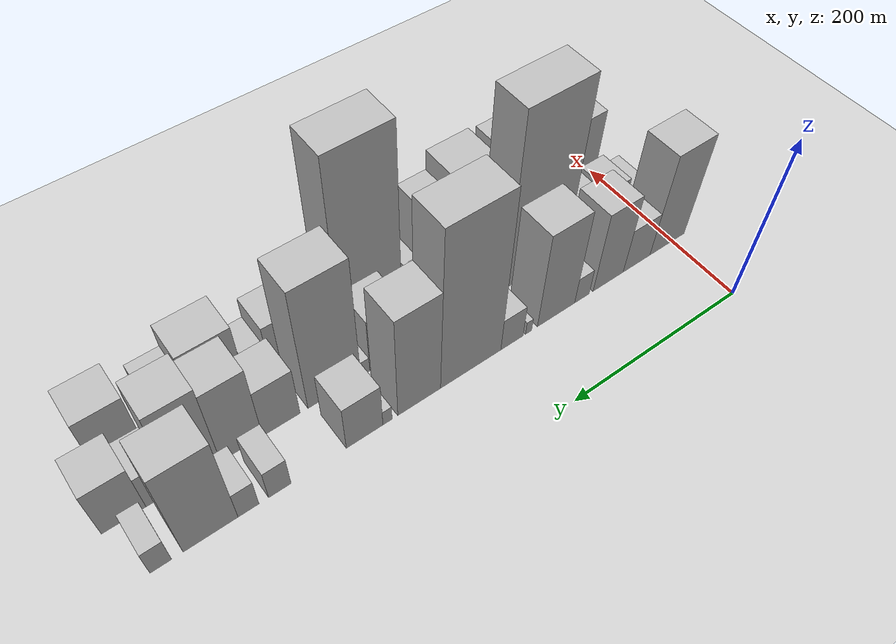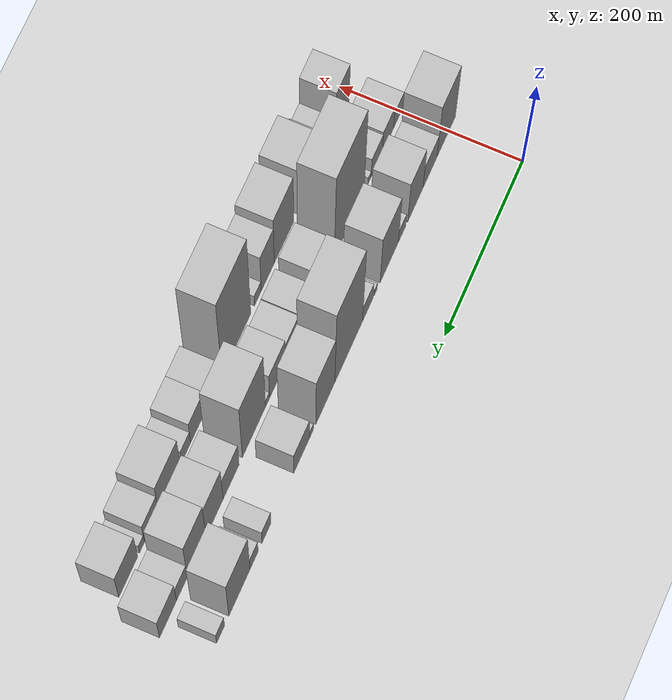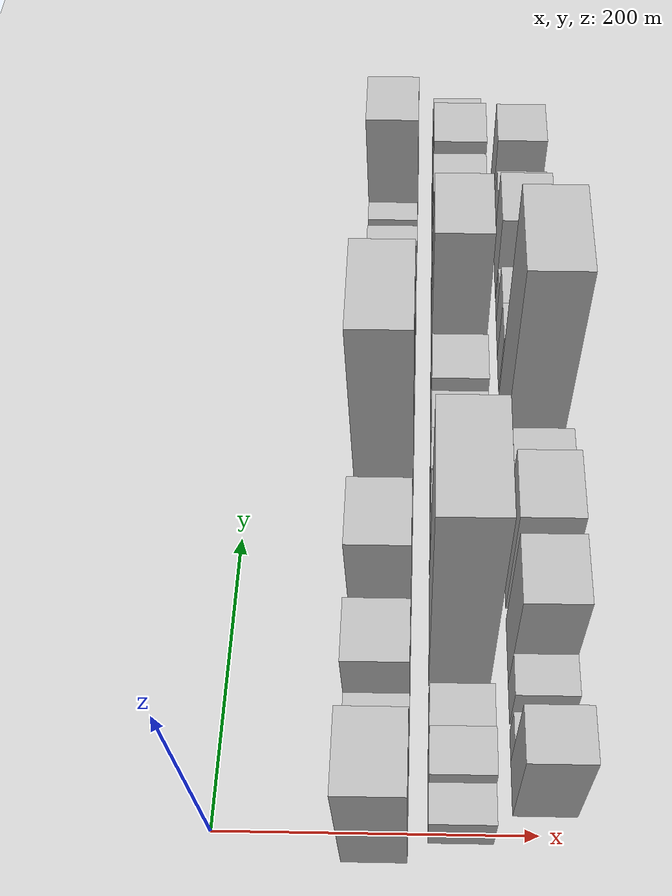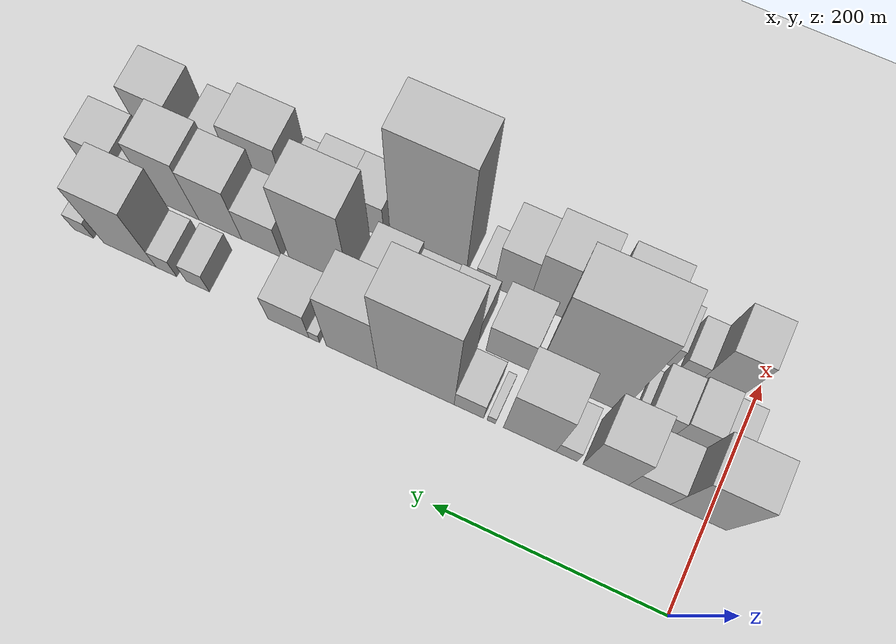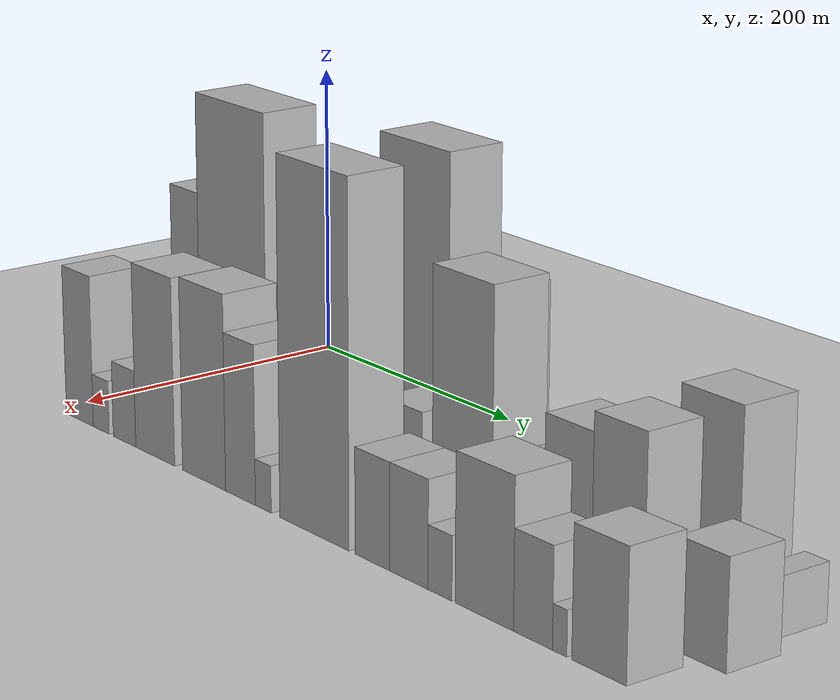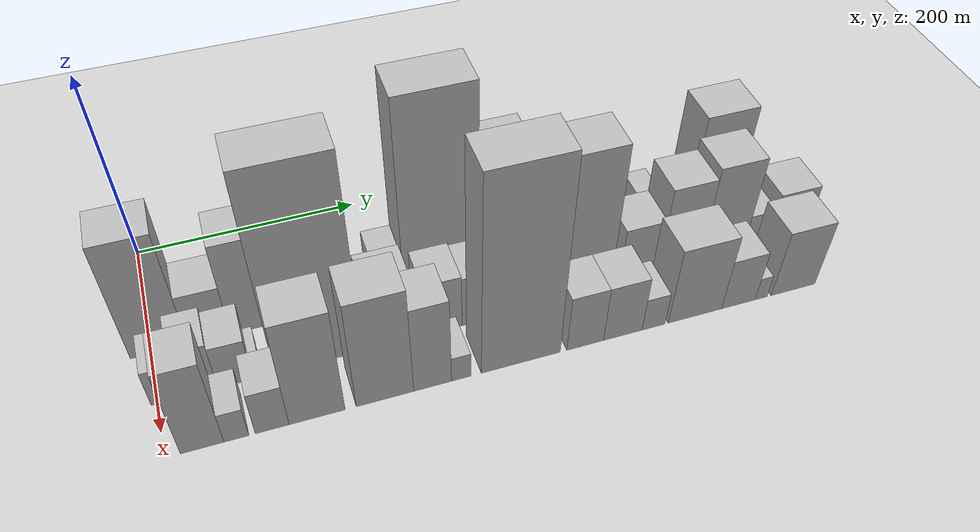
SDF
<sdf version="1.6">
 <world name="default">
  <include>
   <name>ground_plane_2</name>
   <uri>model://HANNAS_ground_plane</uri>
   <pose>100 0 0  0 0 0</pose>
  </include>
  <model name="building_17">
   <static>1</static>
   <pose>100.0000 6.9142 0 0.000000 0.000000 0.000000</pose>
   <link name="link">
    <pose>0 0 67.50 0 0 0</pose>
    <collision name="collision"><geometry><box><size>40.0000 47.3320 135.0000</size></box></geometry></collision>
    <visual name="visual">
     <cast_shadows>0</cast_shadows>
     <geometry><box><size>40.0000 47.3320 135.0000</size></box></geometry>
     <material>
      <script>
       <uri>model://HANNAS_wall/materials/scripts</uri>
       <uri>model://HANNAS_wall/materials/textures</uri>
       <name>vrc/HANNAS_wall</name>
      </script>
     </material>
    </visual>
   </link>
  </model>
  <model name="building_18">
   <static>1</static>
   <pose>100.0000 48.4592 0 0.000000 0.000000 0.000000</pose>
   <link name="link">
    <pose>0 0 30.00 0 0 0</pose>
    <collision name="collision"><geometry><box><size>40.0000 35.7579 60.0000</size></box></geometry></collision>
    <visual name="visual">
     <cast_shadows>0</cast_shadows>
     <geometry><box><size>40.0000 35.7579 60.0000</size></box></geometry>
     <material>
      <script>
       <uri>model://HANNAS_wall/materials/scripts</uri>
       <uri>model://HANNAS_wall/materials/textures</uri>
       <name>vrc/HANNAS_wall</name>
      </script>
     </material>
    </visual>
   </link>
  </model>
  <model name="building_19">
   <static>1</static>
   <pose>100.0000 85.9648 0 0.000000 0.000000 0.000000</pose>
   <link name="link">
    <pose>0 0 54.00 0 0 0</pose>
    <collision name="collision"><geometry><box><size>40.0000 39.2534 108.0000</size></box></geometry></collision>
    <visual name="visual">
     <cast_shadows>0</cast_shadows>
     <geometry><box><size>40.0000 39.2534 108.0000</size></box></geometry>
     <material>
      <script>
       <uri>model://HANNAS_wall/materials/scripts</uri>
       <uri>model://HANNAS_wall/materials/textures</uri>
       <name>vrc/HANNAS_wall</name>
      </script>
     </material>
    </visual>
   </link>
  </model>
  <model name="building_20">
   <static>1</static>
   <pose>100.0000 119.7995 0 0.000000 0.000000 0.000000</pose>
   <link name="link">
    <pose>0 0 18.00 0 0 0</pose>
    <collision name="collision"><geometry><box><size>40.0000 18.4160 36.0000</size></box></geometry></collision>
    <visual name="visual">
     <cast_shadows>0</cast_shadows>
     <geometry><box><size>40.0000 18.4160 36.0000</size></box></geometry>
     <material>
      <script>
       <uri>model://HANNAS_wall/materials/scripts</uri>
       <uri>model://HANNAS_wall/materials/textures</uri>
       <name>vrc/HANNAS_wall</name>
      </script>
     </material>
    </visual>
   </link>
  </model>
  <model name="building_21">
   <static>1</static>
   <pose>100.0000 151.9927 0 0.000000 0.000000 0.000000</pose>
   <link name="link">
    <pose>0 0 64.50 0 0 0</pose>
    <collision name="collision"><geometry><box><size>40.0000 45.9705 129.0000</size></box></geometry></collision>
    <visual name="visual">
     <cast_shadows>0</cast_shadows>
     <geometry><box><size>40.0000 45.9705 129.0000</size></box></geometry>
     <material>
      <script>
       <uri>model://HANNAS_wall/materials/scripts</uri>
       <uri>model://HANNAS_wall/materials/textures</uri>
       <name>vrc/HANNAS_wall</name>
      </script>
     </material>
    </visual>
   </link>
  </model>
  <model name="building_22">
   <static>1</static>
   <pose>100.0000 185.6658 0 0.000000 0.000000 0.000000</pose>
   <link name="link">
    <pose>0 0 9.00 0 0 0</pose>
    <collision name="collision"><geometry><box><size>40.0000 7.3758 18.0000</size></box></geometry></collision>
    <visual name="visual">
     <cast_shadows>0</cast_shadows>
     <geometry><box><size>40.0000 7.3758 18.0000</size></box></geometry>
     <material>
      <script>
       <uri>model://HANNAS_wall/materials/scripts</uri>
       <uri>model://HANNAS_wall/materials/textures</uri>
       <name>vrc/HANNAS_wall</name>
      </script>
     </material>
    </visual>
   </link>
  </model>
  <model name="building_23">
   <static>1</static>
   <pose>100.0000 205.4401 0 0.000000 0.000000 0.000000</pose>
   <link name="link">
    <pose>0 0 22.50 0 0 0</pose>
    <collision name="collision"><geometry><box><size>40.0000 26.1728 45.0000</size></box></geometry></collision>
    <visual name="visual">
     <cast_shadows>0</cast_shadows>
     <geometry><box><size>40.0000 26.1728 45.0000</size></box></geometry>
     <material>
      <script>
       <uri>model://HANNAS_wall/materials/scripts</uri>
       <uri>model://HANNAS_wall/materials/textures</uri>
       <name>vrc/HANNAS_wall</name>
      </script>
     </material>
    </visual>
   </link>
  </model>
  <model name="building_24">
   <static>1</static>
   <pose>100.0000 252.8469 0 0.000000 0.000000 0.000000</pose>
   <link name="link">
    <pose>0 0 108.00 0 0 0</pose>
    <collision name="collision"><geometry><box><size>40.0000 68.6407 216.0000</size></box></geometry></collision>
    <visual name="visual">
     <cast_shadows>0</cast_shadows>
     <geometry><box><size>40.0000 68.6407 216.0000</size></box></geometry>
     <material>
      <script>
       <uri>model://HANNAS_wall/materials/scripts</uri>
       <uri>model://HANNAS_wall/materials/textures</uri>
       <name>vrc/HANNAS_wall</name>
      </script>
     </material>
    </visual>
   </link>
  </model>
  <model name="building_25">
   <static>1</static>
   <pose>100.0000 310.3236 0 0.000000 0.000000 0.000000</pose>
   <link name="link">
    <pose>0 0 70.50 0 0 0</pose>
    <collision name="collision"><geometry><box><size>40.0000 46.3127 141.0000</size></box></geometry></collision>
    <visual name="visual">
     <cast_shadows>0</cast_shadows>
     <geometry><box><size>40.0000 46.3127 141.0000</size></box></geometry>
     <material>
      <script>
       <uri>model://HANNAS_wall/materials/scripts</uri>
       <uri>model://HANNAS_wall/materials/textures</uri>
       <name>vrc/HANNAS_wall</name>
      </script>
     </material>
    </visual>
   </link>
  </model>
  <model name="building_26">
   <static>1</static>
   <pose>100.0000 344.3438 0 0.000000 0.000000 0.000000</pose>
   <link name="link">
    <pose>0 0 10.50 0 0 0</pose>
    <collision name="collision"><geometry><box><size>40.0000 9.7277 21.0000</size></box></geometry></collision>
    <visual name="visual">
     <cast_shadows>0</cast_shadows>
     <geometry><box><size>40.0000 9.7277 21.0000</size></box></geometry>
     <material>
      <script>
       <uri>model://HANNAS_wall/materials/scripts</uri>
       <uri>model://HANNAS_wall/materials/textures</uri>
       <name>vrc/HANNAS_wall</name>
      </script>
     </material>
    </visual>
   </link>
  </model>
  <model name="building_27">
   <static>1</static>
   <pose>100.0000 368.0430 0 0.000000 0.000000 0.000000</pose>
   <link name="link">
    <pose>0 0 31.50 0 0 0</pose>
    <collision name="collision"><geometry><box><size>40.0000 37.6707 63.0000</size></box></geometry></collision>
    <visual name="visual">
     <cast_shadows>0</cast_shadows>
     <geometry><box><size>40.0000 37.6707 63.0000</size></box></geometry>
     <material>
      <script>
       <uri>model://HANNAS_wall/materials/scripts</uri>
       <uri>model://HANNAS_wall/materials/textures</uri>
       <name>vrc/HANNAS_wall</name>
      </script>
     </material>
    </visual>
   </link>
  </model>
  <model name="building_28">
   <static>1</static>
   <pose>100.0000 452.2449 0 0.000000 0.000000 0.000000</pose>
   <link name="link">
    <pose>0 0 21.00 0 0 0</pose>
    <collision name="collision"><geometry><box><size>40.0000 21.5777 42.0000</size></box></geometry></collision>
    <visual name="visual">
     <cast_shadows>0</cast_shadows>
     <geometry><box><size>40.0000 21.5777 42.0000</size></box></geometry>
     <material>
      <script>
       <uri>model://HANNAS_wall/materials/scripts</uri>
       <uri>model://HANNAS_wall/materials/textures</uri>
       <name>vrc/HANNAS_wall</name>
      </script>
     </material>
    </visual>
   </link>
  </model>
  <model name="building_29">
   <static>1</static>
   <pose>100.0000 481.7919 0 0.000000 0.000000 0.000000</pose>
   <link name="link">
    <pose>0 0 19.50 0 0 0</pose>
    <collision name="collision"><geometry><box><size>40.0000 19.5164 39.0000</size></box></geometry></collision>
    <visual name="visual">
     <cast_shadows>0</cast_shadows>
     <geometry><box><size>40.0000 19.5164 39.0000</size></box></geometry>
     <material>
      <script>
       <uri>model://HANNAS_wall/materials/scripts</uri>
       <uri>model://HANNAS_wall/materials/textures</uri>
       <name>vrc/HANNAS_wall</name>
      </script>
     </material>
    </visual>
   </link>
  </model>
  <model name="building_30">
   <static>1</static>
   <pose>100.0000 516.3029 0 0.000000 0.000000 0.000000</pose>
   <link name="link">
    <pose>0 0 63.00 0 0 0</pose>
    <collision name="collision"><geometry><box><size>40.0000 49.5057 126.0000</size></box></geometry></collision>
    <visual name="visual">
     <cast_shadows>0</cast_shadows>
     <geometry><box><size>40.0000 49.5057 126.0000</size></box></geometry>
     <material>
      <script>
       <uri>model://HANNAS_wall/materials/scripts</uri>
       <uri>model://HANNAS_wall/materials/textures</uri>
       <name>vrc/HANNAS_wall</name>
      </script>
     </material>
    </visual>
   </link>
  </model>
  <model name="building_31">
   <static>1</static>
   <pose>100.0000 560.4568 0 0.000000 0.000000 0.000000</pose>
   <link name="link">
    <pose>0 0 18.00 0 0 0</pose>
    <collision name="collision"><geometry><box><size>40.0000 18.8020 36.0000</size></box></geometry></collision>
    <visual name="visual">
     <cast_shadows>0</cast_shadows>
     <geometry><box><size>40.0000 18.8020 36.0000</size></box></geometry>
     <material>
      <script>
       <uri>model://HANNAS_wall/materials/scripts</uri>
       <uri>model://HANNAS_wall/materials/textures</uri>
       <name>vrc/HANNAS_wall</name>
      </script>
     </material>
    </visual>
   </link>
  </model>
  <model name="building_46">
   <static>1</static>
   <pose>152.0000 7.0707 0 0.000000 0.000000 0.000000</pose>
   <link name="link">
    <pose>0 0 21.00 0 0 0</pose>
    <collision name="collision"><geometry><box><size>40.0000 24.2258 42.0000</size></box></geometry></collision>
    <visual name="visual">
     <cast_shadows>0</cast_shadows>
     <geometry><box><size>40.0000 24.2258 42.0000</size></box></geometry>
     <material>
      <script>
       <uri>model://HANNAS_wall/materials/scripts</uri>
       <uri>model://HANNAS_wall/materials/textures</uri>
       <name>vrc/HANNAS_wall</name>
      </script>
     </material>
    </visual>
   </link>
  </model>
  <model name="building_47">
   <static>1</static>
   <pose>152.0000 33.6650 0 0.000000 0.000000 0.000000</pose>
   <link name="link">
    <pose>0 0 28.50 0 0 0</pose>
    <collision name="collision"><geometry><box><size>40.0000 28.9629 57.0000</size></box></geometry></collision>
    <visual name="visual">
     <cast_shadows>0</cast_shadows>
     <geometry><box><size>40.0000 28.9629 57.0000</size></box></geometry>
     <material>
      <script>
       <uri>model://HANNAS_wall/materials/scripts</uri>
       <uri>model://HANNAS_wall/materials/textures</uri>
       <name>vrc/HANNAS_wall</name>
      </script>
     </material>
    </visual>
   </link>
  </model>
  <model name="building_48">
   <static>1</static>
   <pose>152.0000 62.4467 0 0.000000 0.000000 0.000000</pose>
   <link name="link">
    <pose>0 0 25.50 0 0 0</pose>
    <collision name="collision"><geometry><box><size>40.0000 28.6006 51.0000</size></box></geometry></collision>
    <visual name="visual">
     <cast_shadows>0</cast_shadows>
     <geometry><box><size>40.0000 28.6006 51.0000</size></box></geometry>
     <material>
      <script>
       <uri>model://HANNAS_wall/materials/scripts</uri>
       <uri>model://HANNAS_wall/materials/textures</uri>
       <name>vrc/HANNAS_wall</name>
      </script>
     </material>
    </visual>
   </link>
  </model>
  <model name="building_49">
   <static>1</static>
   <pose>152.0000 80.5838 0 0.000000 0.000000 0.000000</pose>
   <link name="link">
    <pose>0 0 9.00 0 0 0</pose>
    <collision name="collision"><geometry><box><size>40.0000 7.6736 18.0000</size></box></geometry></collision>
    <visual name="visual">
     <cast_shadows>0</cast_shadows>
     <geometry><box><size>40.0000 7.6736 18.0000</size></box></geometry>
     <material>
      <script>
       <uri>model://HANNAS_wall/materials/scripts</uri>
       <uri>model://HANNAS_wall/materials/textures</uri>
       <name>vrc/HANNAS_wall</name>
      </script>
     </material>
    </visual>
   </link>
  </model>
  <model name="building_50">
   <static>1</static>
   <pose>152.0000 131.5387 0 0.000000 0.000000 0.000000</pose>
   <link name="link">
    <pose>0 0 112.50 0 0 0</pose>
    <collision name="collision"><geometry><box><size>40.0000 74.2363 225.0000</size></box></geometry></collision>
    <visual name="visual">
     <cast_shadows>0</cast_shadows>
     <geometry><box><size>40.0000 74.2363 225.0000</size></box></geometry>
     <material>
      <script>
       <uri>model://HANNAS_wall/materials/scripts</uri>
       <uri>model://HANNAS_wall/materials/textures</uri>
       <name>vrc/HANNAS_wall</name>
      </script>
     </material>
    </visual>
   </link>
  </model>
  <model name="building_51">
   <static>1</static>
   <pose>152.0000 194.2749 0 0.000000 0.000000 0.000000</pose>
   <link name="link">
    <pose>0 0 37.50 0 0 0</pose>
    <collision name="collision"><geometry><box><size>40.0000 39.2360 75.0000</size></box></geometry></collision>
    <visual name="visual">
     <cast_shadows>0</cast_shadows>
     <geometry><box><size>40.0000 39.2360 75.0000</size></box></geometry>
     <material>
      <script>
       <uri>model://HANNAS_wall/materials/scripts</uri>
       <uri>model://HANNAS_wall/materials/textures</uri>
       <name>vrc/HANNAS_wall</name>
      </script>
     </material>
    </visual>
   </link>
  </model>
  <model name="building_52">
   <static>1</static>
   <pose>152.0000 238.6678 0 0.000000 0.000000 0.000000</pose>
   <link name="link">
    <pose>0 0 31.50 0 0 0</pose>
    <collision name="collision"><geometry><box><size>40.0000 33.5497 63.0000</size></box></geometry></collision>
    <visual name="visual">
     <cast_shadows>0</cast_shadows>
     <geometry><box><size>40.0000 33.5497 63.0000</size></box></geometry>
     <material>
      <script>
       <uri>model://HANNAS_wall/materials/scripts</uri>
       <uri>model://HANNAS_wall/materials/textures</uri>
       <name>vrc/HANNAS_wall</name>
      </script>
     </material>
    </visual>
   </link>
  </model>
  <model name="building_53">
   <static>1</static>
   <pose>152.0000 271.9533 0 0.000000 0.000000 0.000000</pose>
   <link name="link">
    <pose>0 0 30.00 0 0 0</pose>
    <collision name="collision"><geometry><box><size>40.0000 33.0214 60.0000</size></box></geometry></collision>
    <visual name="visual">
     <cast_shadows>0</cast_shadows>
     <geometry><box><size>40.0000 33.0214 60.0000</size></box></geometry>
     <material>
      <script>
       <uri>model://HANNAS_wall/materials/scripts</uri>
       <uri>model://HANNAS_wall/materials/textures</uri>
       <name>vrc/HANNAS_wall</name>
      </script>
     </material>
    </visual>
   </link>
  </model>
  <model name="building_54">
   <static>1</static>
   <pose>152.0000 307.9099 0 0.000000 0.000000 0.000000</pose>
   <link name="link">
    <pose>0 0 37.50 0 0 0</pose>
    <collision name="collision"><geometry><box><size>40.0000 38.8918 75.0000</size></box></geometry></collision>
    <visual name="visual">
     <cast_shadows>0</cast_shadows>
     <geometry><box><size>40.0000 38.8918 75.0000</size></box></geometry>
     <material>
      <script>
       <uri>model://HANNAS_wall/materials/scripts</uri>
       <uri>model://HANNAS_wall/materials/textures</uri>
       <name>vrc/HANNAS_wall</name>
      </script>
     </material>
    </visual>
   </link>
  </model>
  <model name="building_55">
   <static>1</static>
   <pose>152.0000 332.2854 0 0.000000 0.000000 0.000000</pose>
   <link name="link">
    <pose>0 0 10.50 0 0 0</pose>
    <collision name="collision"><geometry><box><size>40.0000 9.8590 21.0000</size></box></geometry></collision>
    <visual name="visual">
     <cast_shadows>0</cast_shadows>
     <geometry><box><size>40.0000 9.8590 21.0000</size></box></geometry>
     <material>
      <script>
       <uri>model://HANNAS_wall/materials/scripts</uri>
       <uri>model://HANNAS_wall/materials/textures</uri>
       <name>vrc/HANNAS_wall</name>
      </script>
     </material>
    </visual>
   </link>
  </model>
  <model name="building_56">
   <static>1</static>
   <pose>152.0000 364.8871 0 0.000000 0.000000 0.000000</pose>
   <link name="link">
    <pose>0 0 84.00 0 0 0</pose>
    <collision name="collision"><geometry><box><size>40.0000 55.3444 168.0000</size></box></geometry></collision>
    <visual name="visual">
     <cast_shadows>0</cast_shadows>
     <geometry><box><size>40.0000 55.3444 168.0000</size></box></geometry>
     <material>
      <script>
       <uri>model://HANNAS_wall/materials/scripts</uri>
       <uri>model://HANNAS_wall/materials/textures</uri>
       <name>vrc/HANNAS_wall</name>
      </script>
     </material>
    </visual>
   </link>
  </model>
  <model name="building_57">
   <static>1</static>
   <pose>152.0000 419.3515 0 0.000000 0.000000 0.000000</pose>
   <link name="link">
    <pose>0 0 34.50 0 0 0</pose>
    <collision name="collision"><geometry><box><size>40.0000 37.5845 69.0000</size></box></geometry></collision>
    <visual name="visual">
     <cast_shadows>0</cast_shadows>
     <geometry><box><size>40.0000 37.5845 69.0000</size></box></geometry>
     <material>
      <script>
       <uri>model://HANNAS_wall/materials/scripts</uri>
       <uri>model://HANNAS_wall/materials/textures</uri>
       <name>vrc/HANNAS_wall</name>
      </script>
     </material>
    </visual>
   </link>
  </model>
  <model name="building_58">
   <static>1</static>
   <pose>152.0000 458.4582 0 0.000000 0.000000 0.000000</pose>
   <link name="link">
    <pose>0 0 52.50 0 0 0</pose>
    <collision name="collision"><geometry><box><size>40.0000 40.6289 105.0000</size></box></geometry></collision>
    <visual name="visual">
     <cast_shadows>0</cast_shadows>
     <geometry><box><size>40.0000 40.6289 105.0000</size></box></geometry>
     <material>
      <script>
       <uri>model://HANNAS_wall/materials/scripts</uri>
       <uri>model://HANNAS_wall/materials/textures</uri>
       <name>vrc/HANNAS_wall</name>
      </script>
     </material>
    </visual>
   </link>
  </model>
  <model name="building_59">
   <static>1</static>
   <pose>152.0000 500.4478 0 0.000000 0.000000 0.000000</pose>
   <link name="link">
    <pose>0 0 58.50 0 0 0</pose>
    <collision name="collision"><geometry><box><size>40.0000 43.3503 117.0000</size></box></geometry></collision>
    <visual name="visual">
     <cast_shadows>0</cast_shadows>
     <geometry><box><size>40.0000 43.3503 117.0000</size></box></geometry>
     <material>
      <script>
       <uri>model://HANNAS_wall/materials/scripts</uri>
       <uri>model://HANNAS_wall/materials/textures</uri>
       <name>vrc/HANNAS_wall</name>
      </script>
     </material>
    </visual>
   </link>
  </model>
  <model name="building_60">
   <static>1</static>
   <pose>152.0000 534.8358 0 0.000000 0.000000 0.000000</pose>
   <link name="link">
    <pose>0 0 24.00 0 0 0</pose>
    <collision name="collision"><geometry><box><size>40.0000 25.4257 48.0000</size></box></geometry></collision>
    <visual name="visual">
     <cast_shadows>0</cast_shadows>
     <geometry><box><size>40.0000 25.4257 48.0000</size></box></geometry>
     <material>
      <script>
       <uri>model://HANNAS_wall/materials/scripts</uri>
       <uri>model://HANNAS_wall/materials/textures</uri>
       <name>vrc/HANNAS_wall</name>
      </script>
     </material>
    </visual>
   </link>
  </model>
  <model name="building_61">
   <static>1</static>
   <pose>152.0000 567.1620 0 0.000000 0.000000 0.000000</pose>
   <link name="link">
    <pose>0 0 33.00 0 0 0</pose>
    <collision name="collision"><geometry><box><size>40.0000 39.2267 66.0000</size></box></geometry></collision>
    <visual name="visual">
     <cast_shadows>0</cast_shadows>
     <geometry><box><size>40.0000 39.2267 66.0000</size></box></geometry>
     <material>
      <script>
       <uri>model://HANNAS_wall/materials/scripts</uri>
       <uri>model://HANNAS_wall/materials/textures</uri>
       <name>vrc/HANNAS_wall</name>
      </script>
     </material>
    </visual>
   </link>
  </model>
  <model name="building_78">
   <static>1</static>
   <pose>204.0000 28.5595 0 0.000000 0.000000 0.000000</pose>
   <link name="link">
    <pose>0 0 51.00 0 0 0</pose>
    <collision name="collision"><geometry><box><size>40.0000 33.4405 102.0000</size></box></geometry></collision>
    <visual name="visual">
     <cast_shadows>0</cast_shadows>
     <geometry><box><size>40.0000 33.4405 102.0000</size></box></geometry>
     <material>
      <script>
       <uri>model://HANNAS_wall/materials/scripts</uri>
       <uri>model://HANNAS_wall/materials/textures</uri>
       <name>vrc/HANNAS_wall</name>
      </script>
     </material>
    </visual>
   </link>
  </model>
  <model name="building_79">
   <static>1</static>
   <pose>204.0000 54.9533 0 0.000000 0.000000 0.000000</pose>
   <link name="link">
    <pose>0 0 18.00 0 0 0</pose>
    <collision name="collision"><geometry><box><size>40.0000 19.3472 36.0000</size></box></geometry></collision>
    <visual name="visual">
     <cast_shadows>0</cast_shadows>
     <geometry><box><size>40.0000 19.3472 36.0000</size></box></geometry>
     <material>
      <script>
       <uri>model://HANNAS_wall/materials/scripts</uri>
       <uri>model://HANNAS_wall/materials/textures</uri>
       <name>vrc/HANNAS_wall</name>
      </script>
     </material>
    </visual>
   </link>
  </model>
  <model name="building_80">
   <static>1</static>
   <pose>204.0000 82.9972 0 0.000000 0.000000 0.000000</pose>
   <link name="link">
    <pose>0 0 25.50 0 0 0</pose>
    <collision name="collision"><geometry><box><size>40.0000 26.7404 51.0000</size></box></geometry></collision>
    <visual name="visual">
     <cast_shadows>0</cast_shadows>
     <geometry><box><size>40.0000 26.7404 51.0000</size></box></geometry>
     <material>
      <script>
       <uri>model://HANNAS_wall/materials/scripts</uri>
       <uri>model://HANNAS_wall/materials/textures</uri>
       <name>vrc/HANNAS_wall</name>
      </script>
     </material>
    </visual>
   </link>
  </model>
  <model name="building_81">
   <static>1</static>
   <pose>204.0000 118.8975 0 0.000000 0.000000 0.000000</pose>
   <link name="link">
    <pose>0 0 61.50 0 0 0</pose>
    <collision name="collision"><geometry><box><size>40.0000 45.0604 123.0000</size></box></geometry></collision>
    <visual name="visual">
     <cast_shadows>0</cast_shadows>
     <geometry><box><size>40.0000 45.0604 123.0000</size></box></geometry>
     <material>
      <script>
       <uri>model://HANNAS_wall/materials/scripts</uri>
       <uri>model://HANNAS_wall/materials/textures</uri>
       <name>vrc/HANNAS_wall</name>
      </script>
     </material>
    </visual>
   </link>
  </model>
  <model name="building_82">
   <static>1</static>
   <pose>204.0000 174.2337 0 0.000000 0.000000 0.000000</pose>
   <link name="link">
    <pose>0 0 63.00 0 0 0</pose>
    <collision name="collision"><geometry><box><size>40.0000 47.6120 126.0000</size></box></geometry></collision>
    <visual name="visual">
     <cast_shadows>0</cast_shadows>
     <geometry><box><size>40.0000 47.6120 126.0000</size></box></geometry>
     <material>
      <script>
       <uri>model://HANNAS_wall/materials/scripts</uri>
       <uri>model://HANNAS_wall/materials/textures</uri>
       <name>vrc/HANNAS_wall</name>
      </script>
     </material>
    </visual>
   </link>
  </model>
  <model name="building_83">
   <static>1</static>
   <pose>204.0000 214.0158 0 0.000000 0.000000 0.000000</pose>
   <link name="link">
    <pose>0 0 51.00 0 0 0</pose>
    <collision name="collision"><geometry><box><size>40.0000 31.9522 102.0000</size></box></geometry></collision>
    <visual name="visual">
     <cast_shadows>0</cast_shadows>
     <geometry><box><size>40.0000 31.9522 102.0000</size></box></geometry>
     <material>
      <script>
       <uri>model://HANNAS_wall/materials/scripts</uri>
       <uri>model://HANNAS_wall/materials/textures</uri>
       <name>vrc/HANNAS_wall</name>
      </script>
     </material>
    </visual>
   </link>
  </model>
  <model name="building_84">
   <static>1</static>
   <pose>204.0000 238.2590 0 0.000000 0.000000 0.000000</pose>
   <link name="link">
    <pose>0 0 15.00 0 0 0</pose>
    <collision name="collision"><geometry><box><size>40.0000 16.5341 30.0000</size></box></geometry></collision>
    <visual name="visual">
     <cast_shadows>0</cast_shadows>
     <geometry><box><size>40.0000 16.5341 30.0000</size></box></geometry>
     <material>
      <script>
       <uri>model://HANNAS_wall/materials/scripts</uri>
       <uri>model://HANNAS_wall/materials/textures</uri>
       <name>vrc/HANNAS_wall</name>
      </script>
     </material>
    </visual>
   </link>
  </model>
  <model name="building_85">
   <static>1</static>
   <pose>204.0000 290.1944 0 0.000000 0.000000 0.000000</pose>
   <link name="link">
    <pose>0 0 112.50 0 0 0</pose>
    <collision name="collision"><geometry><box><size>40.0000 69.3367 225.0000</size></box></geometry></collision>
    <visual name="visual">
     <cast_shadows>0</cast_shadows>
     <geometry><box><size>40.0000 69.3367 225.0000</size></box></geometry>
     <material>
      <script>
       <uri>model://HANNAS_wall/materials/scripts</uri>
       <uri>model://HANNAS_wall/materials/textures</uri>
       <name>vrc/HANNAS_wall</name>
      </script>
     </material>
    </visual>
   </link>
  </model>
  <model name="building_86">
   <static>1</static>
   <pose>204.0000 347.4385 0 0.000000 0.000000 0.000000</pose>
   <link name="link">
    <pose>0 0 33.00 0 0 0</pose>
    <collision name="collision"><geometry><box><size>40.0000 33.1516 66.0000</size></box></geometry></collision>
    <visual name="visual">
     <cast_shadows>0</cast_shadows>
     <geometry><box><size>40.0000 33.1516 66.0000</size></box></geometry>
     <material>
      <script>
       <uri>model://HANNAS_wall/materials/scripts</uri>
       <uri>model://HANNAS_wall/materials/textures</uri>
       <name>vrc/HANNAS_wall</name>
      </script>
     </material>
    </visual>
   </link>
  </model>
  <model name="building_87">
   <static>1</static>
   <pose>204.0000 381.7076 0 0.000000 0.000000 0.000000</pose>
   <link name="link">
    <pose>0 0 33.00 0 0 0</pose>
    <collision name="collision"><geometry><box><size>40.0000 35.3864 66.0000</size></box></geometry></collision>
    <visual name="visual">
     <cast_shadows>0</cast_shadows>
     <geometry><box><size>40.0000 35.3864 66.0000</size></box></geometry>
     <material>
      <script>
       <uri>model://HANNAS_wall/materials/scripts</uri>
       <uri>model://HANNAS_wall/materials/textures</uri>
       <name>vrc/HANNAS_wall</name>
      </script>
     </material>
    </visual>
   </link>
  </model>
  <model name="building_88">
   <static>1</static>
   <pose>204.0000 410.1562 0 0.000000 0.000000 0.000000</pose>
   <link name="link">
    <pose>0 0 19.50 0 0 0</pose>
    <collision name="collision"><geometry><box><size>40.0000 21.5107 39.0000</size></box></geometry></collision>
    <visual name="visual">
     <cast_shadows>0</cast_shadows>
     <geometry><box><size>40.0000 21.5107 39.0000</size></box></geometry>
     <material>
      <script>
       <uri>model://HANNAS_wall/materials/scripts</uri>
       <uri>model://HANNAS_wall/materials/textures</uri>
       <name>vrc/HANNAS_wall</name>
      </script>
     </material>
    </visual>
   </link>
  </model>
  <model name="building_89">
   <static>1</static>
   <pose>204.0000 449.2753 0 0.000000 0.000000 0.000000</pose>
   <link name="link">
    <pose>0 0 45.00 0 0 0</pose>
    <collision name="collision"><geometry><box><size>40.0000 50.7275 90.0000</size></box></geometry></collision>
    <visual name="visual">
     <cast_shadows>0</cast_shadows>
     <geometry><box><size>40.0000 50.7275 90.0000</size></box></geometry>
     <material>
      <script>
       <uri>model://HANNAS_wall/materials/scripts</uri>
       <uri>model://HANNAS_wall/materials/textures</uri>
       <name>vrc/HANNAS_wall</name>
      </script>
     </material>
    </visual>
   </link>
  </model>
  <model name="building_90">
   <static>1</static>
   <pose>204.0000 490.9636 0 0.000000 0.000000 0.000000</pose>
   <link name="link">
    <pose>0 0 30.00 0 0 0</pose>
    <collision name="collision"><geometry><box><size>40.0000 32.6493 60.0000</size></box></geometry></collision>
    <visual name="visual">
     <cast_shadows>0</cast_shadows>
     <geometry><box><size>40.0000 32.6493 60.0000</size></box></geometry>
     <material>
      <script>
       <uri>model://HANNAS_wall/materials/scripts</uri>
       <uri>model://HANNAS_wall/materials/textures</uri>
       <name>vrc/HANNAS_wall</name>
      </script>
     </material>
    </visual>
   </link>
  </model>
  <model name="building_91">
   <static>1</static>
   <pose>204.0000 513.1773 0 0.000000 0.000000 0.000000</pose>
   <link name="link">
    <pose>0 0 13.50 0 0 0</pose>
    <collision name="collision"><geometry><box><size>40.0000 11.7781 27.0000</size></box></geometry></collision>
    <visual name="visual">
     <cast_shadows>0</cast_shadows>
     <geometry><box><size>40.0000 11.7781 27.0000</size></box></geometry>
     <material>
      <script>
       <uri>model://HANNAS_wall/materials/scripts</uri>
       <uri>model://HANNAS_wall/materials/textures</uri>
       <name>vrc/HANNAS_wall</name>
      </script>
     </material>
    </visual>
   </link>
  </model>
  <model name="building_92">
   <static>1</static>
   <pose>204.0000 544.8134 0 0.000000 0.000000 0.000000</pose>
   <link name="link">
    <pose>0 0 39.00 0 0 0</pose>
    <collision name="collision"><geometry><box><size>40.0000 43.4940 78.0000</size></box></geometry></collision>
    <visual name="visual">
     <cast_shadows>0</cast_shadows>
     <geometry><box><size>40.0000 43.4940 78.0000</size></box></geometry>
     <material>
      <script>
       <uri>model://HANNAS_wall/materials/scripts</uri>
       <uri>model://HANNAS_wall/materials/textures</uri>
       <name>vrc/HANNAS_wall</name>
      </script>
     </material>
    </visual>
   </link>
  </model>
 </world>
</sdf>
